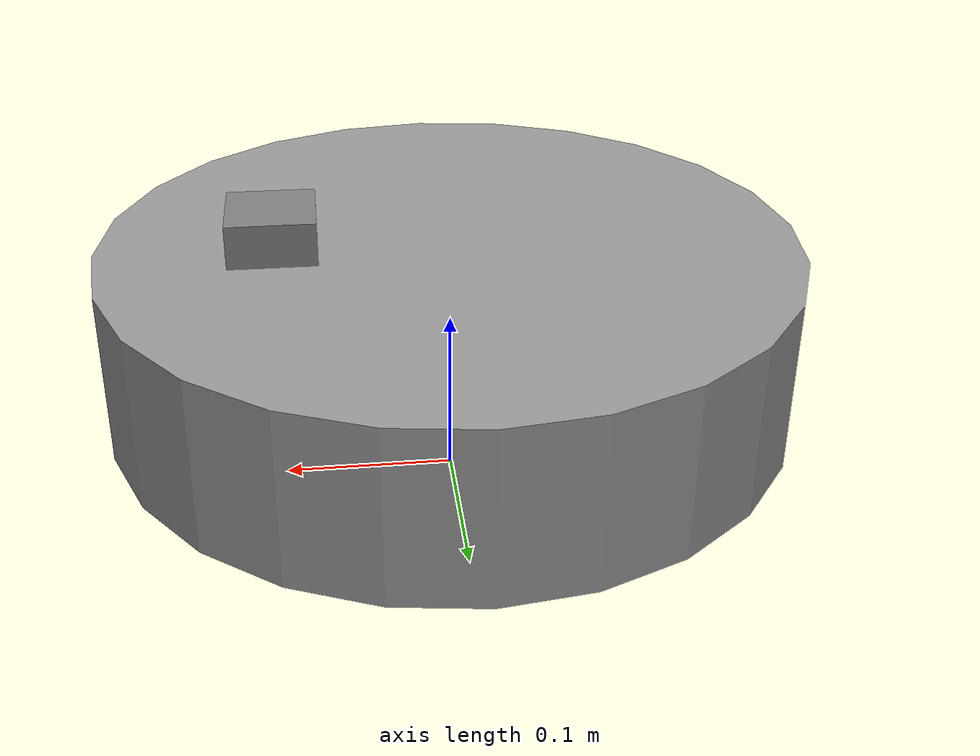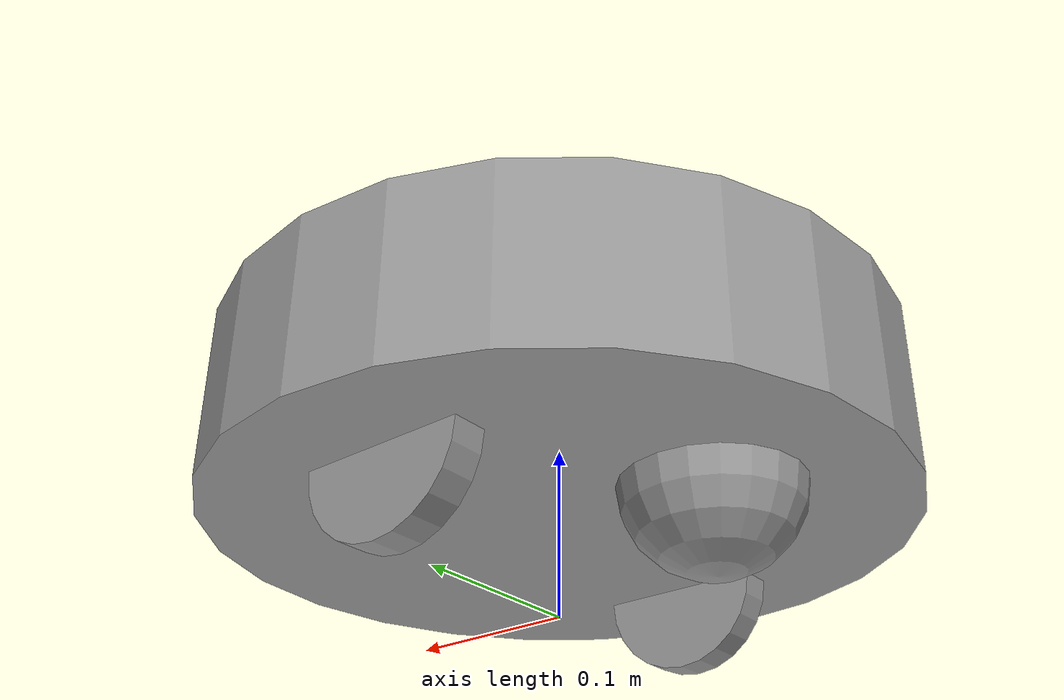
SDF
<?xml version='1.0'?>
<sdf version='1.7'>
  <model name='test_robot'>
    <link name='base_link'>
      <inertial>
        <mass>14.7655</mass>
        <inertia>
          <ixx>0.159959</ixx>
          <ixy>0</ixy>
          <ixz>0</ixz>
          <iyy>0.159959</iyy>
          <iyz>0</iyz>
          <izz>0.29531</izz>
        </inertia>
        <pose>0 0 0 0 -0 0</pose>
      </inertial>
      <pose>-0 0 0.1 0 -0 0</pose>
      <gravity>1</gravity>
      <self_collide>0</self_collide>
      <kinematic>0</kinematic>
      <enable_wind>0</enable_wind>
      <visual name='visual'>
        <pose>0 0 0 0 -0 0</pose>
        <geometry>
          <cylinder>
            <radius>0.2</radius>
            <length>0.1</length>
          </cylinder>
        </geometry>
        <material>
          <lighting>1</lighting>
          <script>
            <uri>file://media/materials/scripts/gazebo.material</uri>
            <name>Gazebo/Grey</name>
          </script>
          <shader type='pixel'>
            <normal_map>__default__</normal_map>
          </shader>
          <ambient>0.3 0.3 0.3 1</ambient>
          <diffuse>0.7 0.7 0.7 1</diffuse>
          <specular>0.01 0.01 0.01 1</specular>
          <emissive>0 0 0 1</emissive>
        </material>
        <transparency>0</transparency>
        <cast_shadows>1</cast_shadows>
      </visual>
      <collision name='collision'>
        <laser_retro>0</laser_retro>
        <max_contacts>10</max_contacts>
        <pose>0 0 0 0 -0 0</pose>
        <geometry>
          <cylinder>
            <radius>0.2</radius>
            <length>0.1</length>
          </cylinder>
        </geometry>
        <surface>
          <friction>
            <ode>
              <mu>1</mu>
              <mu2>1</mu2>
              <fdir1>0 0 0</fdir1>
              <slip1>0</slip1>
              <slip2>0</slip2>
            </ode>
            <torsional>
              <coefficient>1</coefficient>
              <patch_radius>0</patch_radius>
              <surface_radius>0</surface_radius>
              <use_patch_radius>1</use_patch_radius>
              <ode>
                <slip>0</slip>
              </ode>
            </torsional>
          </friction>
          <bounce>
            <restitution_coefficient>0</restitution_coefficient>
            <threshold>1e+06</threshold>
          </bounce>
          <contact>
            <collide_without_contact>0</collide_without_contact>
            <collide_without_contact_bitmask>1</collide_without_contact_bitmask>
            <collide_bitmask>1</collide_bitmask>
            <ode>
              <soft_cfm>0</soft_cfm>
              <soft_erp>0.2</soft_erp>
              <kp>1e+13</kp>
              <kd>1</kd>
              <max_vel>0.01</max_vel>
              <min_depth>0</min_depth>
            </ode>
            <bullet>
              <split_impulse>1</split_impulse>
              <split_impulse_penetration_threshold>-0.01</split_impulse_penetration_threshold>
              <soft_cfm>0</soft_cfm>
              <soft_erp>0.2</soft_erp>
              <kp>1e+13</kp>
              <kd>1</kd>
            </bullet>
          </contact>
        </surface>
      </collision>
    </link>
    <link name='right_wheel_link'>
      <inertial>
        <mass>0.184569</mass>
        <inertia>
          <ixx>0.00012151</ixx>
          <ixy>0</ixy>
          <ixz>0</ixz>
          <iyy>0.00012151</iyy>
          <iyz>0</iyz>
          <izz>0.00023071</izz>
        </inertia>
        <pose>0 0 0 0 -0 0</pose>
      </inertial>
      <pose>-0 -0.13 0.05 1.5707 -0 0</pose>
      <gravity>1</gravity>
      <self_collide>0</self_collide>
      <kinematic>0</kinematic>
      <enable_wind>0</enable_wind>
      <visual name='visual'>
        <pose>0 0 0 0 -0 0</pose>
        <geometry>
          <cylinder>
            <radius>0.05</radius>
            <length>0.02</length>
          </cylinder>
        </geometry>
        <material>
          <lighting>1</lighting>
          <script>
            <uri>file://media/materials/scripts/gazebo.material</uri>
            <name>Gazebo/Grey</name>
          </script>
          <shader type='pixel'>
            <normal_map>__default__</normal_map>
          </shader>
          <ambient>0.3 0.3 0.3 1</ambient>
          <diffuse>0.7 0.7 0.7 1</diffuse>
          <specular>0.01 0.01 0.01 1</specular>
          <emissive>0 0 0 1</emissive>
        </material>
        <transparency>0</transparency>
        <cast_shadows>1</cast_shadows>
      </visual>
      <collision name='collision'>
        <laser_retro>0</laser_retro>
        <max_contacts>10</max_contacts>
        <pose>0 0 0 0 -0 0</pose>
        <geometry>
          <cylinder>
            <radius>0.05</radius>
            <length>0.02</length>
          </cylinder>
        </geometry>
        <surface>
          <friction>
            <ode>
              <mu>1</mu>
              <mu2>1</mu2>
              <fdir1>0 0 0</fdir1>
              <slip1>0</slip1>
              <slip2>0</slip2>
            </ode>
            <torsional>
              <coefficient>1</coefficient>
              <patch_radius>0</patch_radius>
              <surface_radius>0</surface_radius>
              <use_patch_radius>1</use_patch_radius>
              <ode>
                <slip>0</slip>
              </ode>
            </torsional>
          </friction>
          <bounce>
            <restitution_coefficient>0</restitution_coefficient>
            <threshold>1e+06</threshold>
          </bounce>
          <contact>
            <collide_without_contact>0</collide_without_contact>
            <collide_without_contact_bitmask>1</collide_without_contact_bitmask>
            <collide_bitmask>1</collide_bitmask>
            <ode>
              <soft_cfm>0</soft_cfm>
              <soft_erp>0.2</soft_erp>
              <kp>1e+13</kp>
              <kd>1</kd>
              <max_vel>0.01</max_vel>
              <min_depth>0</min_depth>
            </ode>
            <bullet>
              <split_impulse>1</split_impulse>
              <split_impulse_penetration_threshold>-0.01</split_impulse_penetration_threshold>
              <soft_cfm>0</soft_cfm>
              <soft_erp>0.2</soft_erp>
              <kp>1e+13</kp>
              <kd>1</kd>
            </bullet>
          </contact>
        </surface>
      </collision>
    </link>
    <link name='left_wheel_link'>
      <inertial>
        <mass>0.184569</mass>
        <inertia>
          <ixx>0.00012151</ixx>
          <ixy>0</ixy>
          <ixz>0</ixz>
          <iyy>0.00012151</iyy>
          <iyz>0</iyz>
          <izz>0.00023071</izz>
        </inertia>
        <pose>0 0 0 0 -0 0</pose>
      </inertial>
      <pose>-0 0.13 0.05 1.5707 -0 0</pose>
      <gravity>1</gravity>
      <self_collide>0</self_collide>
      <kinematic>0</kinematic>
      <enable_wind>0</enable_wind>
      <visual name='visual'>
        <pose>0 0 0 0 -0 0</pose>
        <geometry>
          <cylinder>
            <radius>0.05</radius>
            <length>0.02</length>
          </cylinder>
        </geometry>
        <material>
          <lighting>1</lighting>
          <script>
            <uri>file://media/materials/scripts/gazebo.material</uri>
            <name>Gazebo/Grey</name>
          </script>
          <shader type='pixel'>
            <normal_map>__default__</normal_map>
          </shader>
          <ambient>0.3 0.3 0.3 1</ambient>
          <diffuse>0.7 0.7 0.7 1</diffuse>
          <specular>0.01 0.01 0.01 1</specular>
          <emissive>0 0 0 1</emissive>
        </material>
        <transparency>0</transparency>
        <cast_shadows>1</cast_shadows>
      </visual>
      <collision name='collision'>
        <laser_retro>0</laser_retro>
        <max_contacts>10</max_contacts>
        <pose>0 0 0 0 -0 0</pose>
        <geometry>
          <cylinder>
            <radius>0.05</radius>
            <length>0.02</length>
          </cylinder>
        </geometry>
        <surface>
          <friction>
            <ode>
              <mu>1</mu>
              <mu2>1</mu2>
              <fdir1>0 0 0</fdir1>
              <slip1>0</slip1>
              <slip2>0</slip2>
            </ode>
            <torsional>
              <coefficient>1</coefficient>
              <patch_radius>0</patch_radius>
              <surface_radius>0</surface_radius>
              <use_patch_radius>1</use_patch_radius>
              <ode>
                <slip>0</slip>
              </ode>
            </torsional>
          </friction>
          <bounce>
            <restitution_coefficient>0</restitution_coefficient>
            <threshold>1e+06</threshold>
          </bounce>
          <contact>
            <collide_without_contact>0</collide_without_contact>
            <collide_without_contact_bitmask>1</collide_without_contact_bitmask>
            <collide_bitmask>1</collide_bitmask>
            <ode>
              <soft_cfm>0</soft_cfm>
              <soft_erp>0.2</soft_erp>
              <kp>1e+13</kp>
              <kd>1</kd>
              <max_vel>0.01</max_vel>
              <min_depth>0</min_depth>
            </ode>
            <bullet>
              <split_impulse>1</split_impulse>
              <split_impulse_penetration_threshold>-0.01</split_impulse_penetration_threshold>
              <soft_cfm>0</soft_cfm>
              <soft_erp>0.2</soft_erp>
              <kp>1e+13</kp>
              <kd>1</kd>
            </bullet>
          </contact>
        </surface>
      </collision>
    </link>
    <link name='ball_wheel_link'>
      <inertial>
        <mass>5</mass>
        <inertia>
          <ixx>0.00061523</ixx>
          <ixy>0</ixy>
          <ixz>0</ixz>
          <iyy>0.00061523</iyy>
          <iyz>0</iyz>
          <izz>0.00061523</izz>
        </inertia>
        <pose>0 0 0 0 -0 0</pose>
      </inertial>
      <pose>-0.1 0 0.05 0 -0 0</pose>
      <gravity>1</gravity>
      <self_collide>0</self_collide>
      <kinematic>0</kinematic>
      <enable_wind>0</enable_wind>
      <visual name='visual'>
        <pose>0 0 0 0 -0 0</pose>
        <geometry>
          <sphere>
            <radius>0.05</radius>
          </sphere>
        </geometry>
        <material>
          <lighting>1</lighting>
          <script>
            <uri>file://media/materials/scripts/gazebo.material</uri>
            <name>Gazebo/Grey</name>
          </script>
          <shader type='pixel'>
            <normal_map>__default__</normal_map>
          </shader>
          <ambient>0.3 0.3 0.3 1</ambient>
          <diffuse>0.7 0.7 0.7 1</diffuse>
          <specular>0.01 0.01 0.01 1</specular>
          <emissive>0 0 0 1</emissive>
        </material>
        <transparency>0</transparency>
        <cast_shadows>1</cast_shadows>
      </visual>
      <collision name='collision'>
        <laser_retro>0</laser_retro>
        <max_contacts>10</max_contacts>
        <pose>0 0 0 0 -0 0</pose>
        <geometry>
          <sphere>
            <radius>0.05</radius>
          </sphere>
        </geometry>
        <surface>
          <friction>
            <ode>
              <mu>1</mu>
              <mu2>1</mu2>
              <fdir1>0 0 0</fdir1>
              <slip1>0</slip1>
              <slip2>0</slip2>
            </ode>
            <torsional>
              <coefficient>1</coefficient>
              <patch_radius>0</patch_radius>
              <surface_radius>0</surface_radius>
              <use_patch_radius>1</use_patch_radius>
              <ode>
                <slip>0</slip>
              </ode>
            </torsional>
          </friction>
          <bounce>
            <restitution_coefficient>0</restitution_coefficient>
            <threshold>1e+06</threshold>
          </bounce>
          <contact>
            <collide_without_contact>0</collide_without_contact>
            <collide_without_contact_bitmask>1</collide_without_contact_bitmask>
            <collide_bitmask>1</collide_bitmask>
            <ode>
              <soft_cfm>0</soft_cfm>
              <soft_erp>0.2</soft_erp>
              <kp>1e+13</kp>
              <kd>1</kd>
              <max_vel>0.01</max_vel>
              <min_depth>0</min_depth>
            </ode>
            <bullet>
              <split_impulse>1</split_impulse>
              <split_impulse_penetration_threshold>-0.01</split_impulse_penetration_threshold>
              <soft_cfm>0</soft_cfm>
              <soft_erp>0.2</soft_erp>
              <kp>1e+13</kp>
              <kd>1</kd>
            </bullet>
          </contact>
        </surface>
      </collision>
    </link>

     <!-- Camera Link -->
    <link name="camera_link">
      <pose>0.1 0 0.16 0 0 0</pose>
      <inertial>
        <mass>0.2</mass>
        <inertia>
          <ixx>0.001</ixx>
          <iyy>0.001</iyy>
          <izz>0.001</izz>
        </inertia>
      </inertial>
      <collision name="camera_collision">
        <geometry>
          <box>
            <size>0.05 0.05 0.03</size>
          </box>
        </geometry>
      </collision>
      <visual name="camera_visual">
        <geometry>
          <box>
            <size>0.05 0.05 0.03</size>
          </box>
        </geometry>
        <material>
          <ambient>0.2 0.2 0.2 1</ambient>
          <diffuse>0.5 0.5 0.5 1</diffuse>
        </material>
      </visual>

      <!-- Camera Sensor -->
      <sensor name="camera" type="camera">
      <always_on>1</always_on>
      <update_rate>30</update_rate>
        <camera>
          <horizontal_fov>1.047</horizontal_fov>
          <image>
            <width>640</width>
            <height>480</height>
            <format>R8G8B8</format>
          </image>
          <clip>
            <near>0.1</near>
            <far>100</far>
          </clip>
        </camera>
        <plugin name="gazebo_ros_camera" filename="libgazebo_ros_camera.so">
          <camera_name>robot_camera</camera_name>
          <image_topic_name>image_raw</image_topic_name>
          <camera_info_topic_name>camera_info</camera_info_topic_name>
          <frame_name>camera_link</frame_name>
          <camera_namespace>/robot</camera_namespace>
        </plugin>
      </sensor>
    </link>

    <joint name='right_wheel_joint' type='revolute'>
      <parent>base_link</parent>
      <child>right_wheel_link</child>
      <pose>0 0 0 0 -0 0</pose>
      <axis>
        <xyz>-0 -0 -1</xyz>
        <limit>
          <lower>-1.79769e+308</lower>
          <upper>1.79769e+308</upper>
          <effort>-1</effort>
          <velocity>-1</velocity>
        </limit>
        <dynamics>
          <spring_reference>0</spring_reference>
          <spring_stiffness>0</spring_stiffness>
          <damping>0</damping>
        </dynamics>
      </axis>
      <physics>
        <ode>
          <limit>
            <cfm>0</cfm>
            <erp>0.2</erp>
          </limit>
          <suspension>
            <cfm>0</cfm>
            <erp>0.2</erp>
          </suspension>
        </ode>
      </physics>
    </joint>
    <joint name='left_wheel_joint' type='revolute'>
      <parent>base_link</parent>
      <child>left_wheel_link</child>
      <pose>0 0 0 0 -0 0</pose>
      <axis>
        <xyz>-0 -0 -1</xyz>
        <limit>
          <lower>-1.79769e+308</lower>
          <upper>1.79769e+308</upper>
          <effort>-1</effort>
          <velocity>-1</velocity>
        </limit>
        <dynamics>
          <spring_reference>0</spring_reference>
          <spring_stiffness>0</spring_stiffness>
          <damping>0</damping>
        </dynamics>
      </axis>
      <physics>
        <ode>
          <limit>
            <cfm>0</cfm>
            <erp>0.2</erp>
          </limit>
          <suspension>
            <cfm>0</cfm>
            <erp>0.2</erp>
          </suspension>
        </ode>
      </physics>
    </joint>
    <joint name='ball_wheel_joint' type='ball'>
      <parent>base_link</parent>
      <child>ball_wheel_link</child>
      <pose>0 0 0 0 -0 0</pose>
      <physics>
        <ode>
          <limit>
            <cfm>0</cfm>
            <erp>0.2</erp>
          </limit>
          <suspension>
            <cfm>0</cfm>
            <erp>0.2</erp>
          </suspension>
        </ode>
      </physics>
    </joint>

    <joint name='camera_joint' type='fixed'>
      <parent>base_link</parent>
      <child>camera_link</child>
      <axis>
      <xyz>0 0 0</xyz>
      </axis>
    </joint>

    <static>0</static>
    <allow_auto_disable>1</allow_auto_disable>
    <plugin name='wheel_robot_controller' filename='/home/svyat/navigation_ws/install/test_robot_plugin/lib/libwheel_robot_controller.so'>
    </plugin>
  </model>
</sdf>
